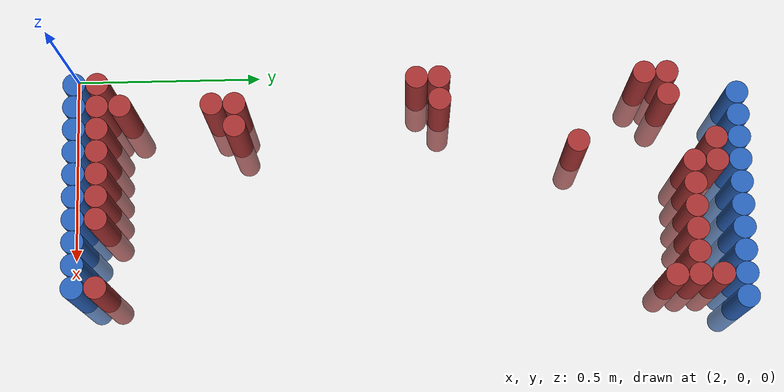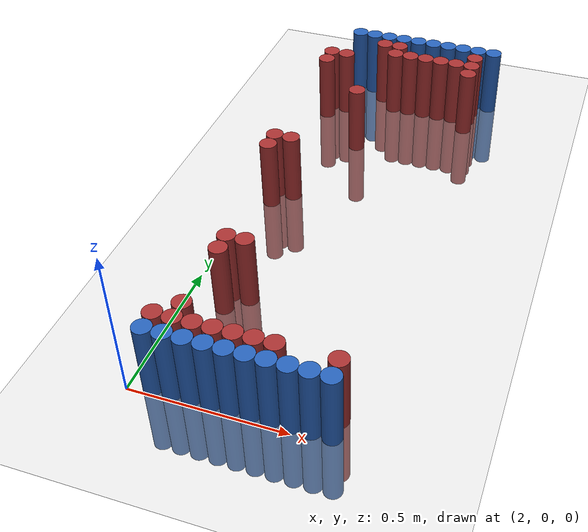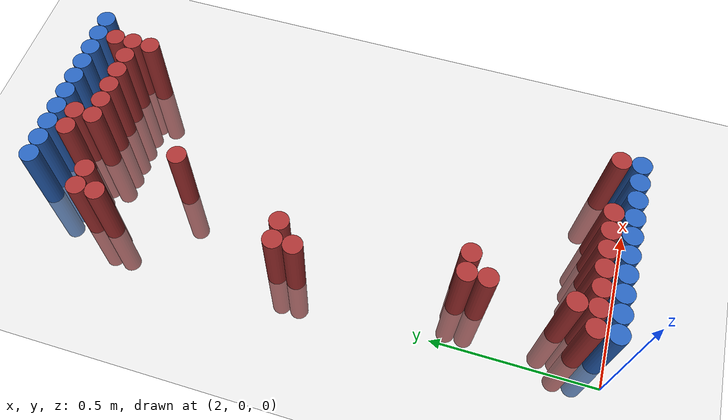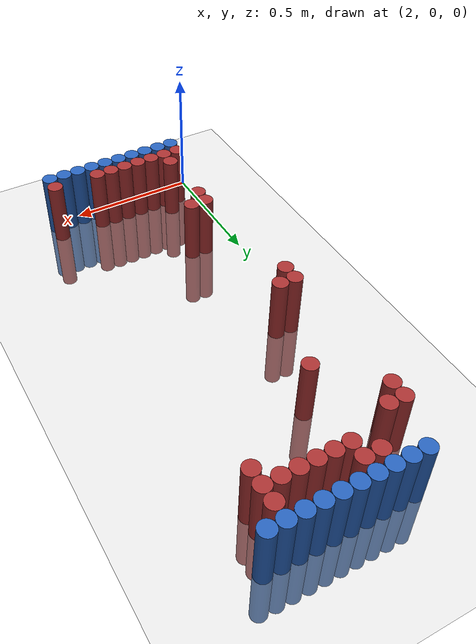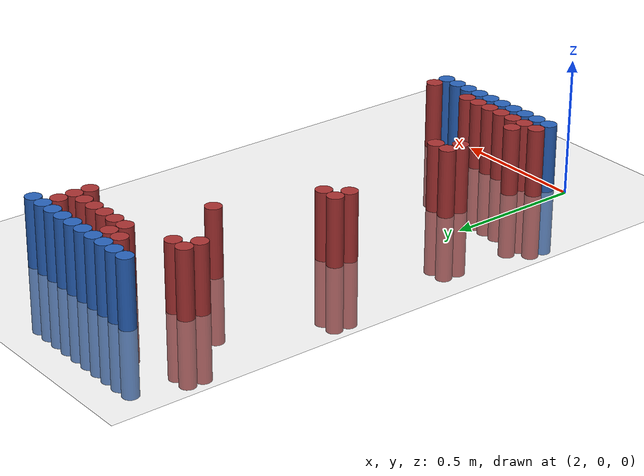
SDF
<sdf version="1.6">
 <world name="default">
  <model name="ground_plane">
   <static>1</static>
   <link name="link">
    <collision name="collision">
     <geometry><plane><normal>0 0 1</normal><size>100 100</size></plane></geometry>
     <surface><friction><ode><mu>100</mu><mu2>50</mu2></ode></friction></surface>
    </collision>
    <visual name="visual">
     <cast_shadows>0</cast_shadows>
     <geometry><plane><normal>0 0 1</normal><size>100 100</size></plane></geometry>
     <material>
      <script><uri>file://media/materials/scripts/gazebo.material</uri><name>Gazebo/Grey</name></script>
     </material>
    </visual>
   </link>
  </model>
  <model name="unit_cylinder_96">
   <static>1</static>
   <pose>2.130000 1.770000 0.000000 0.000000 0.000000 0.000000</pose>
   <link name="link">
    <inertial>
     <mass>1</mass>
     <inertia><ixx>0.145833</ixx><ixy>0</ixy><ixz>0</ixz><iyy>0.145833</iyy><iyz>0</iyz><izz>0.125</izz></inertia>
    </inertial>
    <collision name="collision">
     <geometry><cylinder><radius>0.030000</radius><length>0.5</length></cylinder></geometry>
    </collision>
    <visual name="visual">
     <geometry><cylinder><radius>0.030000</radius><length>0.5</length></cylinder></geometry>
     <material>
      <ambient>0.152000 0.379000 0.720000 1</ambient>
      <diffuse>0.152000 0.379000 0.720000 1</diffuse>
     </material>
     <material>
      <script><name>Gazebo/Grey</name><uri>file://media/materials/scripts/gazebo.material</uri></script>
     </material>
    </visual>
   </link>
  </model>
  <model name="unit_cylinder_97">
   <static>1</static>
   <pose>2.190000 1.770000 0.000000 0.000000 0.000000 0.000000</pose>
   <link name="link">
    <inertial>
     <mass>1</mass>
     <inertia><ixx>0.145833</ixx><ixy>0</ixy><ixz>0</ixz><iyy>0.145833</iyy><iyz>0</iyz><izz>0.125</izz></inertia>
    </inertial>
    <collision name="collision">
     <geometry><cylinder><radius>0.030000</radius><length>0.5</length></cylinder></geometry>
    </collision>
    <visual name="visual">
     <geometry><cylinder><radius>0.030000</radius><length>0.5</length></cylinder></geometry>
     <material>
      <ambient>0.152000 0.379000 0.720000 1</ambient>
      <diffuse>0.152000 0.379000 0.720000 1</diffuse>
     </material>
     <material>
      <script><name>Gazebo/Grey</name><uri>file://media/materials/scripts/gazebo.material</uri></script>
     </material>
    </visual>
   </link>
  </model>
  <model name="unit_cylinder_98">
   <static>1</static>
   <pose>2.250000 1.770000 0.000000 0.000000 0.000000 0.000000</pose>
   <link name="link">
    <inertial>
     <mass>1</mass>
     <inertia><ixx>0.145833</ixx><ixy>0</ixy><ixz>0</ixz><iyy>0.145833</iyy><iyz>0</iyz><izz>0.125</izz></inertia>
    </inertial>
    <collision name="collision">
     <geometry><cylinder><radius>0.030000</radius><length>0.5</length></cylinder></geometry>
    </collision>
    <visual name="visual">
     <geometry><cylinder><radius>0.030000</radius><length>0.5</length></cylinder></geometry>
     <material>
      <ambient>0.152000 0.379000 0.720000 1</ambient>
      <diffuse>0.152000 0.379000 0.720000 1</diffuse>
     </material>
     <material>
      <script><name>Gazebo/Grey</name><uri>file://media/materials/scripts/gazebo.material</uri></script>
     </material>
    </visual>
   </link>
  </model>
  <model name="unit_cylinder_99">
   <static>1</static>
   <pose>2.310000 1.770000 0.000000 0.000000 0.000000 0.000000</pose>
   <link name="link">
    <inertial>
     <mass>1</mass>
     <inertia><ixx>0.145833</ixx><ixy>0</ixy><ixz>0</ixz><iyy>0.145833</iyy><iyz>0</iyz><izz>0.125</izz></inertia>
    </inertial>
    <collision name="collision">
     <geometry><cylinder><radius>0.030000</radius><length>0.5</length></cylinder></geometry>
    </collision>
    <visual name="visual">
     <geometry><cylinder><radius>0.030000</radius><length>0.5</length></cylinder></geometry>
     <material>
      <ambient>0.152000 0.379000 0.720000 1</ambient>
      <diffuse>0.152000 0.379000 0.720000 1</diffuse>
     </material>
     <material>
      <script><name>Gazebo/Grey</name><uri>file://media/materials/scripts/gazebo.material</uri></script>
     </material>
    </visual>
   </link>
  </model>
  <model name="unit_cylinder_100">
   <static>1</static>
   <pose>2.370000 1.770000 0.000000 0.000000 0.000000 0.000000</pose>
   <link name="link">
    <inertial>
     <mass>1</mass>
     <inertia><ixx>0.145833</ixx><ixy>0</ixy><ixz>0</ixz><iyy>0.145833</iyy><iyz>0</iyz><izz>0.125</izz></inertia>
    </inertial>
    <collision name="collision">
     <geometry><cylinder><radius>0.030000</radius><length>0.5</length></cylinder></geometry>
    </collision>
    <visual name="visual">
     <geometry><cylinder><radius>0.030000</radius><length>0.5</length></cylinder></geometry>
     <material>
      <ambient>0.152000 0.379000 0.720000 1</ambient>
      <diffuse>0.152000 0.379000 0.720000 1</diffuse>
     </material>
     <material>
      <script><name>Gazebo/Grey</name><uri>file://media/materials/scripts/gazebo.material</uri></script>
     </material>
    </visual>
   </link>
  </model>
  <model name="unit_cylinder_101">
   <static>1</static>
   <pose>2.430000 1.770000 0.000000 0.000000 0.000000 0.000000</pose>
   <link name="link">
    <inertial>
     <mass>1</mass>
     <inertia><ixx>0.145833</ixx><ixy>0</ixy><ixz>0</ixz><iyy>0.145833</iyy><iyz>0</iyz><izz>0.125</izz></inertia>
    </inertial>
    <collision name="collision">
     <geometry><cylinder><radius>0.030000</radius><length>0.5</length></cylinder></geometry>
    </collision>
    <visual name="visual">
     <geometry><cylinder><radius>0.030000</radius><length>0.5</length></cylinder></geometry>
     <material>
      <ambient>0.152000 0.379000 0.720000 1</ambient>
      <diffuse>0.152000 0.379000 0.720000 1</diffuse>
     </material>
     <material>
      <script><name>Gazebo/Grey</name><uri>file://media/materials/scripts/gazebo.material</uri></script>
     </material>
    </visual>
   </link>
  </model>
  <model name="unit_cylinder_102">
   <static>1</static>
   <pose>2.490000 1.770000 0.000000 0.000000 0.000000 0.000000</pose>
   <link name="link">
    <inertial>
     <mass>1</mass>
     <inertia><ixx>0.145833</ixx><ixy>0</ixy><ixz>0</ixz><iyy>0.145833</iyy><iyz>0</iyz><izz>0.125</izz></inertia>
    </inertial>
    <collision name="collision">
     <geometry><cylinder><radius>0.030000</radius><length>0.5</length></cylinder></geometry>
    </collision>
    <visual name="visual">
     <geometry><cylinder><radius>0.030000</radius><length>0.5</length></cylinder></geometry>
     <material>
      <ambient>0.152000 0.379000 0.720000 1</ambient>
      <diffuse>0.152000 0.379000 0.720000 1</diffuse>
     </material>
     <material>
      <script><name>Gazebo/Grey</name><uri>file://media/materials/scripts/gazebo.material</uri></script>
     </material>
    </visual>
   </link>
  </model>
  <model name="unit_cylinder_103">
   <static>1</static>
   <pose>2.550000 1.770000 0.000000 0.000000 0.000000 0.000000</pose>
   <link name="link">
    <inertial>
     <mass>1</mass>
     <inertia><ixx>0.145833</ixx><ixy>0</ixy><ixz>0</ixz><iyy>0.145833</iyy><iyz>0</iyz><izz>0.125</izz></inertia>
    </inertial>
    <collision name="collision">
     <geometry><cylinder><radius>0.030000</radius><length>0.5</length></cylinder></geometry>
    </collision>
    <visual name="visual">
     <geometry><cylinder><radius>0.030000</radius><length>0.5</length></cylinder></geometry>
     <material>
      <ambient>0.152000 0.379000 0.720000 1</ambient>
      <diffuse>0.152000 0.379000 0.720000 1</diffuse>
     </material>
     <material>
      <script><name>Gazebo/Grey</name><uri>file://media/materials/scripts/gazebo.material</uri></script>
     </material>
    </visual>
   </link>
  </model>
  <model name="unit_cylinder_104">
   <static>1</static>
   <pose>2.610000 1.770000 0.000000 0.000000 0.000000 0.000000</pose>
   <link name="link">
    <inertial>
     <mass>1</mass>
     <inertia><ixx>0.145833</ixx><ixy>0</ixy><ixz>0</ixz><iyy>0.145833</iyy><iyz>0</iyz><izz>0.125</izz></inertia>
    </inertial>
    <collision name="collision">
     <geometry><cylinder><radius>0.030000</radius><length>0.5</length></cylinder></geometry>
    </collision>
    <visual name="visual">
     <geometry><cylinder><radius>0.030000</radius><length>0.5</length></cylinder></geometry>
     <material>
      <ambient>0.152000 0.379000 0.720000 1</ambient>
      <diffuse>0.152000 0.379000 0.720000 1</diffuse>
     </material>
     <material>
      <script><name>Gazebo/Grey</name><uri>file://media/materials/scripts/gazebo.material</uri></script>
     </material>
    </visual>
   </link>
  </model>
  <model name="unit_cylinder_105">
   <static>1</static>
   <pose>2.670000 1.770000 0.000000 0.000000 0.000000 0.000000</pose>
   <link name="link">
    <inertial>
     <mass>1</mass>
     <inertia><ixx>0.145833</ixx><ixy>0</ixy><ixz>0</ixz><iyy>0.145833</iyy><iyz>0</iyz><izz>0.125</izz></inertia>
    </inertial>
    <collision name="collision">
     <geometry><cylinder><radius>0.030000</radius><length>0.5</length></cylinder></geometry>
    </collision>
    <visual name="visual">
     <geometry><cylinder><radius>0.030000</radius><length>0.5</length></cylinder></geometry>
     <material>
      <ambient>0.152000 0.379000 0.720000 1</ambient>
      <diffuse>0.152000 0.379000 0.720000 1</diffuse>
     </material>
     <material>
      <script><name>Gazebo/Grey</name><uri>file://media/materials/scripts/gazebo.material</uri></script>
     </material>
    </visual>
   </link>
  </model>
  <model name="unit_cylinder_126">
   <static>1</static>
   <pose>2.250000 1.710000 0.000000 0.000000 0.000000 0.000000</pose>
   <link name="link">
    <inertial>
     <mass>1</mass>
     <inertia><ixx>0.145833</ixx><ixy>0</ixy><ixz>0</ixz><iyy>0.145833</iyy><iyz>0</iyz><izz>0.125</izz></inertia>
    </inertial>
    <collision name="collision">
     <geometry><cylinder><radius>0.030000</radius><length>0.5</length></cylinder></geometry>
    </collision>
    <visual name="visual">
     <geometry><cylinder><radius>0.030000</radius><length>0.5</length></cylinder></geometry>
     <material>
      <ambient>0.648000 0.192000 0.192000 1</ambient>
      <diffuse>0.648000 0.192000 0.192000 1</diffuse>
     </material>
     <material>
      <script><name>Gazebo/Grey</name><uri>file://media/materials/scripts/gazebo.material</uri></script>
     </material>
    </visual>
   </link>
  </model>
  <model name="unit_cylinder_127">
   <static>1</static>
   <pose>2.310000 1.710000 0.000000 0.000000 0.000000 0.000000</pose>
   <link name="link">
    <inertial>
     <mass>1</mass>
     <inertia><ixx>0.145833</ixx><ixy>0</ixy><ixz>0</ixz><iyy>0.145833</iyy><iyz>0</iyz><izz>0.125</izz></inertia>
    </inertial>
    <collision name="collision">
     <geometry><cylinder><radius>0.030000</radius><length>0.5</length></cylinder></geometry>
    </collision>
    <visual name="visual">
     <geometry><cylinder><radius>0.030000</radius><length>0.5</length></cylinder></geometry>
     <material>
      <ambient>0.648000 0.192000 0.192000 1</ambient>
      <diffuse>0.648000 0.192000 0.192000 1</diffuse>
     </material>
     <material>
      <script><name>Gazebo/Grey</name><uri>file://media/materials/scripts/gazebo.material</uri></script>
     </material>
    </visual>
   </link>
  </model>
  <model name="unit_cylinder_128">
   <static>1</static>
   <pose>2.610000 1.710000 0.000000 0.000000 0.000000 0.000000</pose>
   <link name="link">
    <inertial>
     <mass>1</mass>
     <inertia><ixx>0.145833</ixx><ixy>0</ixy><ixz>0</ixz><iyy>0.145833</iyy><iyz>0</iyz><izz>0.125</izz></inertia>
    </inertial>
    <collision name="collision">
     <geometry><cylinder><radius>0.030000</radius><length>0.5</length></cylinder></geometry>
    </collision>
    <visual name="visual">
     <geometry><cylinder><radius>0.030000</radius><length>0.5</length></cylinder></geometry>
     <material>
      <ambient>0.648000 0.192000 0.192000 1</ambient>
      <diffuse>0.648000 0.192000 0.192000 1</diffuse>
     </material>
     <material>
      <script><name>Gazebo/Grey</name><uri>file://media/materials/scripts/gazebo.material</uri></script>
     </material>
    </visual>
   </link>
  </model>
  <model name="unit_cylinder_134">
   <static>1</static>
   <pose>2.310000 1.650000 0.000000 0.000000 0.000000 0.000000</pose>
   <link name="link">
    <inertial>
     <mass>1</mass>
     <inertia><ixx>0.145833</ixx><ixy>0</ixy><ixz>0</ixz><iyy>0.145833</iyy><iyz>0</iyz><izz>0.125</izz></inertia>
    </inertial>
    <collision name="collision">
     <geometry><cylinder><radius>0.030000</radius><length>0.5</length></cylinder></geometry>
    </collision>
    <visual name="visual">
     <geometry><cylinder><radius>0.030000</radius><length>0.5</length></cylinder></geometry>
     <material>
      <ambient>0.648000 0.192000 0.192000 1</ambient>
      <diffuse>0.648000 0.192000 0.192000 1</diffuse>
     </material>
     <material>
      <script><name>Gazebo/Grey</name><uri>file://media/materials/scripts/gazebo.material</uri></script>
     </material>
    </visual>
   </link>
  </model>
  <model name="unit_cylinder_135">
   <static>1</static>
   <pose>2.370000 1.650000 0.000000 0.000000 0.000000 0.000000</pose>
   <link name="link">
    <inertial>
     <mass>1</mass>
     <inertia><ixx>0.145833</ixx><ixy>0</ixy><ixz>0</ixz><iyy>0.145833</iyy><iyz>0</iyz><izz>0.125</izz></inertia>
    </inertial>
    <collision name="collision">
     <geometry><cylinder><radius>0.030000</radius><length>0.5</length></cylinder></geometry>
    </collision>
    <visual name="visual">
     <geometry><cylinder><radius>0.030000</radius><length>0.5</length></cylinder></geometry>
     <material>
      <ambient>0.648000 0.192000 0.192000 1</ambient>
      <diffuse>0.648000 0.192000 0.192000 1</diffuse>
     </material>
     <material>
      <script><name>Gazebo/Grey</name><uri>file://media/materials/scripts/gazebo.material</uri></script>
     </material>
    </visual>
   </link>
  </model>
  <model name="unit_cylinder_136">
   <static>1</static>
   <pose>2.430000 1.650000 0.000000 0.000000 0.000000 0.000000</pose>
   <link name="link">
    <inertial>
     <mass>1</mass>
     <inertia><ixx>0.145833</ixx><ixy>0</ixy><ixz>0</ixz><iyy>0.145833</iyy><iyz>0</iyz><izz>0.125</izz></inertia>
    </inertial>
    <collision name="collision">
     <geometry><cylinder><radius>0.030000</radius><length>0.5</length></cylinder></geometry>
    </collision>
    <visual name="visual">
     <geometry><cylinder><radius>0.030000</radius><length>0.5</length></cylinder></geometry>
     <material>
      <ambient>0.648000 0.192000 0.192000 1</ambient>
      <diffuse>0.648000 0.192000 0.192000 1</diffuse>
     </material>
     <material>
      <script><name>Gazebo/Grey</name><uri>file://media/materials/scripts/gazebo.material</uri></script>
     </material>
    </visual>
   </link>
  </model>
  <model name="unit_cylinder_137">
   <static>1</static>
   <pose>2.490000 1.650000 0.000000 0.000000 0.000000 0.000000</pose>
   <link name="link">
    <inertial>
     <mass>1</mass>
     <inertia><ixx>0.145833</ixx><ixy>0</ixy><ixz>0</ixz><iyy>0.145833</iyy><iyz>0</iyz><izz>0.125</izz></inertia>
    </inertial>
    <collision name="collision">
     <geometry><cylinder><radius>0.030000</radius><length>0.5</length></cylinder></geometry>
    </collision>
    <visual name="visual">
     <geometry><cylinder><radius>0.030000</radius><length>0.5</length></cylinder></geometry>
     <material>
      <ambient>0.648000 0.192000 0.192000 1</ambient>
      <diffuse>0.648000 0.192000 0.192000 1</diffuse>
     </material>
     <material>
      <script><name>Gazebo/Grey</name><uri>file://media/materials/scripts/gazebo.material</uri></script>
     </material>
    </visual>
   </link>
  </model>
  <model name="unit_cylinder_138">
   <static>1</static>
   <pose>2.550000 1.650000 0.000000 0.000000 0.000000 0.000000</pose>
   <link name="link">
    <inertial>
     <mass>1</mass>
     <inertia><ixx>0.145833</ixx><ixy>0</ixy><ixz>0</ixz><iyy>0.145833</iyy><iyz>0</iyz><izz>0.125</izz></inertia>
    </inertial>
    <collision name="collision">
     <geometry><cylinder><radius>0.030000</radius><length>0.5</length></cylinder></geometry>
    </collision>
    <visual name="visual">
     <geometry><cylinder><radius>0.030000</radius><length>0.5</length></cylinder></geometry>
     <material>
      <ambient>0.648000 0.192000 0.192000 1</ambient>
      <diffuse>0.648000 0.192000 0.192000 1</diffuse>
     </material>
     <material>
      <script><name>Gazebo/Grey</name><uri>file://media/materials/scripts/gazebo.material</uri></script>
     </material>
    </visual>
   </link>
  </model>
  <model name="unit_cylinder_139">
   <static>1</static>
   <pose>2.610000 1.650000 0.000000 0.000000 0.000000 0.000000</pose>
   <link name="link">
    <inertial>
     <mass>1</mass>
     <inertia><ixx>0.145833</ixx><ixy>0</ixy><ixz>0</ixz><iyy>0.145833</iyy><iyz>0</iyz><izz>0.125</izz></inertia>
    </inertial>
    <collision name="collision">
     <geometry><cylinder><radius>0.030000</radius><length>0.5</length></cylinder></geometry>
    </collision>
    <visual name="visual">
     <geometry><cylinder><radius>0.030000</radius><length>0.5</length></cylinder></geometry>
     <material>
      <ambient>0.648000 0.192000 0.192000 1</ambient>
      <diffuse>0.648000 0.192000 0.192000 1</diffuse>
     </material>
     <material>
      <script><name>Gazebo/Grey</name><uri>file://media/materials/scripts/gazebo.material</uri></script>
     </material>
    </visual>
   </link>
  </model>
  <model name="unit_cylinder_140">
   <static>1</static>
   <pose>2.070000 1.590000 0.000000 0.000000 0.000000 0.000000</pose>
   <link name="link">
    <inertial>
     <mass>1</mass>
     <inertia><ixx>0.145833</ixx><ixy>0</ixy><ixz>0</ixz><iyy>0.145833</iyy><iyz>0</iyz><izz>0.125</izz></inertia>
    </inertial>
    <collision name="collision">
     <geometry><cylinder><radius>0.030000</radius><length>0.5</length></cylinder></geometry>
    </collision>
    <visual name="visual">
     <geometry><cylinder><radius>0.030000</radius><length>0.5</length></cylinder></geometry>
     <material>
      <ambient>0.648000 0.192000 0.192000 1</ambient>
      <diffuse>0.648000 0.192000 0.192000 1</diffuse>
     </material>
     <material>
      <script><name>Gazebo/Grey</name><uri>file://media/materials/scripts/gazebo.material</uri></script>
     </material>
    </visual>
   </link>
  </model>
  <model name="unit_cylinder_141">
   <static>1</static>
   <pose>2.130000 1.590000 0.000000 0.000000 0.000000 0.000000</pose>
   <link name="link">
    <inertial>
     <mass>1</mass>
     <inertia><ixx>0.145833</ixx><ixy>0</ixy><ixz>0</ixz><iyy>0.145833</iyy><iyz>0</iyz><izz>0.125</izz></inertia>
    </inertial>
    <collision name="collision">
     <geometry><cylinder><radius>0.030000</radius><length>0.5</length></cylinder></geometry>
    </collision>
    <visual name="visual">
     <geometry><cylinder><radius>0.030000</radius><length>0.5</length></cylinder></geometry>
     <material>
      <ambient>0.648000 0.192000 0.192000 1</ambient>
      <diffuse>0.648000 0.192000 0.192000 1</diffuse>
     </material>
     <material>
      <script><name>Gazebo/Grey</name><uri>file://media/materials/scripts/gazebo.material</uri></script>
     </material>
    </visual>
   </link>
  </model>
  <model name="unit_cylinder_142">
   <static>1</static>
   <pose>2.610000 1.590000 0.000000 0.000000 0.000000 0.000000</pose>
   <link name="link">
    <inertial>
     <mass>1</mass>
     <inertia><ixx>0.145833</ixx><ixy>0</ixy><ixz>0</ixz><iyy>0.145833</iyy><iyz>0</iyz><izz>0.125</izz></inertia>
    </inertial>
    <collision name="collision">
     <geometry><cylinder><radius>0.030000</radius><length>0.5</length></cylinder></geometry>
    </collision>
    <visual name="visual">
     <geometry><cylinder><radius>0.030000</radius><length>0.5</length></cylinder></geometry>
     <material>
      <ambient>0.648000 0.192000 0.192000 1</ambient>
      <diffuse>0.648000 0.192000 0.192000 1</diffuse>
     </material>
     <material>
      <script><name>Gazebo/Grey</name><uri>file://media/materials/scripts/gazebo.material</uri></script>
     </material>
    </visual>
   </link>
  </model>
  <model name="unit_cylinder_143">
   <static>1</static>
   <pose>2.070000 1.530000 0.000000 0.000000 0.000000 0.000000</pose>
   <link name="link">
    <inertial>
     <mass>1</mass>
     <inertia><ixx>0.145833</ixx><ixy>0</ixy><ixz>0</ixz><iyy>0.145833</iyy><iyz>0</iyz><izz>0.125</izz></inertia>
    </inertial>
    <collision name="collision">
     <geometry><cylinder><radius>0.030000</radius><length>0.5</length></cylinder></geometry>
    </collision>
    <visual name="visual">
     <geometry><cylinder><radius>0.030000</radius><length>0.5</length></cylinder></geometry>
     <material>
      <ambient>0.648000 0.192000 0.192000 1</ambient>
      <diffuse>0.648000 0.192000 0.192000 1</diffuse>
     </material>
     <material>
      <script><name>Gazebo/Grey</name><uri>file://media/materials/scripts/gazebo.material</uri></script>
     </material>
    </visual>
   </link>
  </model>
  <model name="unit_cylinder_155">
   <static>1</static>
   <pose>2.250000 1.350000 0.000000 0.000000 0.000000 0.000000</pose>
   <link name="link">
    <inertial>
     <mass>1</mass>
     <inertia><ixx>0.145833</ixx><ixy>0</ixy><ixz>0</ixz><iyy>0.145833</iyy><iyz>0</iyz><izz>0.125</izz></inertia>
    </inertial>
    <collision name="collision">
     <geometry><cylinder><radius>0.030000</radius><length>0.5</length></cylinder></geometry>
    </collision>
    <visual name="visual">
     <geometry><cylinder><radius>0.030000</radius><length>0.5</length></cylinder></geometry>
     <material>
      <ambient>0.648000 0.192000 0.192000 1</ambient>
      <diffuse>0.648000 0.192000 0.192000 1</diffuse>
     </material>
     <material>
      <script><name>Gazebo/Grey</name><uri>file://media/materials/scripts/gazebo.material</uri></script>
     </material>
    </visual>
   </link>
  </model>
  <model name="unit_cylinder_172">
   <static>1</static>
   <pose>2.070000 0.990000 0.000000 0.000000 0.000000 0.000000</pose>
   <link name="link">
    <inertial>
     <mass>1</mass>
     <inertia><ixx>0.145833</ixx><ixy>0</ixy><ixz>0</ixz><iyy>0.145833</iyy><iyz>0</iyz><izz>0.125</izz></inertia>
    </inertial>
    <collision name="collision">
     <geometry><cylinder><radius>0.030000</radius><length>0.5</length></cylinder></geometry>
    </collision>
    <visual name="visual">
     <geometry><cylinder><radius>0.030000</radius><length>0.5</length></cylinder></geometry>
     <material>
      <ambient>0.648000 0.192000 0.192000 1</ambient>
      <diffuse>0.648000 0.192000 0.192000 1</diffuse>
     </material>
     <material>
      <script><name>Gazebo/Grey</name><uri>file://media/materials/scripts/gazebo.material</uri></script>
     </material>
    </visual>
   </link>
  </model>
  <model name="unit_cylinder_173">
   <static>1</static>
   <pose>2.130000 0.990000 0.000000 0.000000 0.000000 0.000000</pose>
   <link name="link">
    <inertial>
     <mass>1</mass>
     <inertia><ixx>0.145833</ixx><ixy>0</ixy><ixz>0</ixz><iyy>0.145833</iyy><iyz>0</iyz><izz>0.125</izz></inertia>
    </inertial>
    <collision name="collision">
     <geometry><cylinder><radius>0.030000</radius><length>0.5</length></cylinder></geometry>
    </collision>
    <visual name="visual">
     <geometry><cylinder><radius>0.030000</radius><length>0.5</length></cylinder></geometry>
     <material>
      <ambient>0.648000 0.192000 0.192000 1</ambient>
      <diffuse>0.648000 0.192000 0.192000 1</diffuse>
     </material>
     <material>
      <script><name>Gazebo/Grey</name><uri>file://media/materials/scripts/gazebo.material</uri></script>
     </material>
    </visual>
   </link>
  </model>
  <model name="unit_cylinder_177">
   <static>1</static>
   <pose>2.070000 0.930000 0.000000 0.000000 0.000000 0.000000</pose>
   <link name="link">
    <inertial>
     <mass>1</mass>
     <inertia><ixx>0.145833</ixx><ixy>0</ixy><ixz>0</ixz><iyy>0.145833</iyy><iyz>0</iyz><izz>0.125</izz></inertia>
    </inertial>
    <collision name="collision">
     <geometry><cylinder><radius>0.030000</radius><length>0.5</length></cylinder></geometry>
    </collision>
    <visual name="visual">
     <geometry><cylinder><radius>0.030000</radius><length>0.5</length></cylinder></geometry>
     <material>
      <ambient>0.648000 0.192000 0.192000 1</ambient>
      <diffuse>0.648000 0.192000 0.192000 1</diffuse>
     </material>
     <material>
      <script><name>Gazebo/Grey</name><uri>file://media/materials/scripts/gazebo.material</uri></script>
     </material>
    </visual>
   </link>
  </model>
  <model name="unit_cylinder_193">
   <static>1</static>
   <pose>2.130000 0.450000 0.000000 0.000000 0.000000 0.000000</pose>
   <link name="link">
    <inertial>
     <mass>1</mass>
     <inertia><ixx>0.145833</ixx><ixy>0</ixy><ixz>0</ixz><iyy>0.145833</iyy><iyz>0</iyz><izz>0.125</izz></inertia>
    </inertial>
    <collision name="collision">
     <geometry><cylinder><radius>0.030000</radius><length>0.5</length></cylinder></geometry>
    </collision>
    <visual name="visual">
     <geometry><cylinder><radius>0.030000</radius><length>0.5</length></cylinder></geometry>
     <material>
      <ambient>0.648000 0.192000 0.192000 1</ambient>
      <diffuse>0.648000 0.192000 0.192000 1</diffuse>
     </material>
     <material>
      <script><name>Gazebo/Grey</name><uri>file://media/materials/scripts/gazebo.material</uri></script>
     </material>
    </visual>
   </link>
  </model>
  <model name="unit_cylinder_194">
   <static>1</static>
   <pose>2.190000 0.450000 0.000000 0.000000 0.000000 0.000000</pose>
   <link name="link">
    <inertial>
     <mass>1</mass>
     <inertia><ixx>0.145833</ixx><ixy>0</ixy><ixz>0</ixz><iyy>0.145833</iyy><iyz>0</iyz><izz>0.125</izz></inertia>
    </inertial>
    <collision name="collision">
     <geometry><cylinder><radius>0.030000</radius><length>0.5</length></cylinder></geometry>
    </collision>
    <visual name="visual">
     <geometry><cylinder><radius>0.030000</radius><length>0.5</length></cylinder></geometry>
     <material>
      <ambient>0.648000 0.192000 0.192000 1</ambient>
      <diffuse>0.648000 0.192000 0.192000 1</diffuse>
     </material>
     <material>
      <script><name>Gazebo/Grey</name><uri>file://media/materials/scripts/gazebo.material</uri></script>
     </material>
    </visual>
   </link>
  </model>
  <model name="unit_cylinder_196">
   <static>1</static>
   <pose>2.130000 0.390000 0.000000 0.000000 0.000000 0.000000</pose>
   <link name="link">
    <inertial>
     <mass>1</mass>
     <inertia><ixx>0.145833</ixx><ixy>0</ixy><ixz>0</ixz><iyy>0.145833</iyy><iyz>0</iyz><izz>0.125</izz></inertia>
    </inertial>
    <collision name="collision">
     <geometry><cylinder><radius>0.030000</radius><length>0.5</length></cylinder></geometry>
    </collision>
    <visual name="visual">
     <geometry><cylinder><radius>0.030000</radius><length>0.5</length></cylinder></geometry>
     <material>
      <ambient>0.648000 0.192000 0.192000 1</ambient>
      <diffuse>0.648000 0.192000 0.192000 1</diffuse>
     </material>
     <material>
      <script><name>Gazebo/Grey</name><uri>file://media/materials/scripts/gazebo.material</uri></script>
     </material>
    </visual>
   </link>
  </model>
  <model name="unit_cylinder_197">
   <static>1</static>
   <pose>2.130000 0.150000 0.000000 0.000000 0.000000 0.000000</pose>
   <link name="link">
    <inertial>
     <mass>1</mass>
     <inertia><ixx>0.145833</ixx><ixy>0</ixy><ixz>0</ixz><iyy>0.145833</iyy><iyz>0</iyz><izz>0.125</izz></inertia>
    </inertial>
    <collision name="collision">
     <geometry><cylinder><radius>0.030000</radius><length>0.5</length></cylinder></geometry>
    </collision>
    <visual name="visual">
     <geometry><cylinder><radius>0.030000</radius><length>0.5</length></cylinder></geometry>
     <material>
      <ambient>0.648000 0.192000 0.192000 1</ambient>
      <diffuse>0.648000 0.192000 0.192000 1</diffuse>
     </material>
     <material>
      <script><name>Gazebo/Grey</name><uri>file://media/materials/scripts/gazebo.material</uri></script>
     </material>
    </visual>
   </link>
  </model>
  <model name="unit_cylinder_198">
   <static>1</static>
   <pose>2.070000 0.090000 0.000000 0.000000 0.000000 0.000000</pose>
   <link name="link">
    <inertial>
     <mass>1</mass>
     <inertia><ixx>0.145833</ixx><ixy>0</ixy><ixz>0</ixz><iyy>0.145833</iyy><iyz>0</iyz><izz>0.125</izz></inertia>
    </inertial>
    <collision name="collision">
     <geometry><cylinder><radius>0.030000</radius><length>0.5</length></cylinder></geometry>
    </collision>
    <visual name="visual">
     <geometry><cylinder><radius>0.030000</radius><length>0.5</length></cylinder></geometry>
     <material>
      <ambient>0.648000 0.192000 0.192000 1</ambient>
      <diffuse>0.648000 0.192000 0.192000 1</diffuse>
     </material>
     <material>
      <script><name>Gazebo/Grey</name><uri>file://media/materials/scripts/gazebo.material</uri></script>
     </material>
    </visual>
   </link>
  </model>
  <model name="unit_cylinder_199">
   <static>1</static>
   <pose>2.130000 0.090000 0.000000 0.000000 0.000000 0.000000</pose>
   <link name="link">
    <inertial>
     <mass>1</mass>
     <inertia><ixx>0.145833</ixx><ixy>0</ixy><ixz>0</ixz><iyy>0.145833</iyy><iyz>0</iyz><izz>0.125</izz></inertia>
    </inertial>
    <collision name="collision">
     <geometry><cylinder><radius>0.030000</radius><length>0.5</length></cylinder></geometry>
    </collision>
    <visual name="visual">
     <geometry><cylinder><radius>0.030000</radius><length>0.5</length></cylinder></geometry>
     <material>
      <ambient>0.648000 0.192000 0.192000 1</ambient>
      <diffuse>0.648000 0.192000 0.192000 1</diffuse>
     </material>
     <material>
      <script><name>Gazebo/Grey</name><uri>file://media/materials/scripts/gazebo.material</uri></script>
     </material>
    </visual>
   </link>
  </model>
  <model name="unit_cylinder_200">
   <static>1</static>
   <pose>2.190000 0.090000 0.000000 0.000000 0.000000 0.000000</pose>
   <link name="link">
    <inertial>
     <mass>1</mass>
     <inertia><ixx>0.145833</ixx><ixy>0</ixy><ixz>0</ixz><iyy>0.145833</iyy><iyz>0</iyz><izz>0.125</izz></inertia>
    </inertial>
    <collision name="collision">
     <geometry><cylinder><radius>0.030000</radius><length>0.5</length></cylinder></geometry>
    </collision>
    <visual name="visual">
     <geometry><cylinder><radius>0.030000</radius><length>0.5</length></cylinder></geometry>
     <material>
      <ambient>0.648000 0.192000 0.192000 1</ambient>
      <diffuse>0.648000 0.192000 0.192000 1</diffuse>
     </material>
     <material>
      <script><name>Gazebo/Grey</name><uri>file://media/materials/scripts/gazebo.material</uri></script>
     </material>
    </visual>
   </link>
  </model>
  <model name="unit_cylinder_201">
   <static>1</static>
   <pose>2.250000 0.090000 0.000000 0.000000 0.000000 0.000000</pose>
   <link name="link">
    <inertial>
     <mass>1</mass>
     <inertia><ixx>0.145833</ixx><ixy>0</ixy><ixz>0</ixz><iyy>0.145833</iyy><iyz>0</iyz><izz>0.125</izz></inertia>
    </inertial>
    <collision name="collision">
     <geometry><cylinder><radius>0.030000</radius><length>0.5</length></cylinder></geometry>
    </collision>
    <visual name="visual">
     <geometry><cylinder><radius>0.030000</radius><length>0.5</length></cylinder></geometry>
     <material>
      <ambient>0.648000 0.192000 0.192000 1</ambient>
      <diffuse>0.648000 0.192000 0.192000 1</diffuse>
     </material>
     <material>
      <script><name>Gazebo/Grey</name><uri>file://media/materials/scripts/gazebo.material</uri></script>
     </material>
    </visual>
   </link>
  </model>
  <model name="unit_cylinder_202">
   <static>1</static>
   <pose>2.310000 0.090000 0.000000 0.000000 0.000000 0.000000</pose>
   <link name="link">
    <inertial>
     <mass>1</mass>
     <inertia><ixx>0.145833</ixx><ixy>0</ixy><ixz>0</ixz><iyy>0.145833</iyy><iyz>0</iyz><izz>0.125</izz></inertia>
    </inertial>
    <collision name="collision">
     <geometry><cylinder><radius>0.030000</radius><length>0.5</length></cylinder></geometry>
    </collision>
    <visual name="visual">
     <geometry><cylinder><radius>0.030000</radius><length>0.5</length></cylinder></geometry>
     <material>
      <ambient>0.648000 0.192000 0.192000 1</ambient>
      <diffuse>0.648000 0.192000 0.192000 1</diffuse>
     </material>
     <material>
      <script><name>Gazebo/Grey</name><uri>file://media/materials/scripts/gazebo.material</uri></script>
     </material>
    </visual>
   </link>
  </model>
  <model name="unit_cylinder_203">
   <static>1</static>
   <pose>2.370000 0.090000 0.000000 0.000000 0.000000 0.000000</pose>
   <link name="link">
    <inertial>
     <mass>1</mass>
     <inertia><ixx>0.145833</ixx><ixy>0</ixy><ixz>0</ixz><iyy>0.145833</iyy><iyz>0</iyz><izz>0.125</izz></inertia>
    </inertial>
    <collision name="collision">
     <geometry><cylinder><radius>0.030000</radius><length>0.5</length></cylinder></geometry>
    </collision>
    <visual name="visual">
     <geometry><cylinder><radius>0.030000</radius><length>0.5</length></cylinder></geometry>
     <material>
      <ambient>0.648000 0.192000 0.192000 1</ambient>
      <diffuse>0.648000 0.192000 0.192000 1</diffuse>
     </material>
     <material>
      <script><name>Gazebo/Grey</name><uri>file://media/materials/scripts/gazebo.material</uri></script>
     </material>
    </visual>
   </link>
  </model>
  <model name="unit_cylinder_204">
   <static>1</static>
   <pose>2.430000 0.090000 0.000000 0.000000 0.000000 0.000000</pose>
   <link name="link">
    <inertial>
     <mass>1</mass>
     <inertia><ixx>0.145833</ixx><ixy>0</ixy><ixz>0</ixz><iyy>0.145833</iyy><iyz>0</iyz><izz>0.125</izz></inertia>
    </inertial>
    <collision name="collision">
     <geometry><cylinder><radius>0.030000</radius><length>0.5</length></cylinder></geometry>
    </collision>
    <visual name="visual">
     <geometry><cylinder><radius>0.030000</radius><length>0.5</length></cylinder></geometry>
     <material>
      <ambient>0.648000 0.192000 0.192000 1</ambient>
      <diffuse>0.648000 0.192000 0.192000 1</diffuse>
     </material>
     <material>
      <script><name>Gazebo/Grey</name><uri>file://media/materials/scripts/gazebo.material</uri></script>
     </material>
    </visual>
   </link>
  </model>
  <model name="unit_cylinder_205">
   <static>1</static>
   <pose>2.610000 0.090000 0.000000 0.000000 0.000000 0.000000</pose>
   <link name="link">
    <inertial>
     <mass>1</mass>
     <inertia><ixx>0.145833</ixx><ixy>0</ixy><ixz>0</ixz><iyy>0.145833</iyy><iyz>0</iyz><izz>0.125</izz></inertia>
    </inertial>
    <collision name="collision">
     <geometry><cylinder><radius>0.030000</radius><length>0.5</length></cylinder></geometry>
    </collision>
    <visual name="visual">
     <geometry><cylinder><radius>0.030000</radius><length>0.5</length></cylinder></geometry>
     <material>
      <ambient>0.648000 0.192000 0.192000 1</ambient>
      <diffuse>0.648000 0.192000 0.192000 1</diffuse>
     </material>
     <material>
      <script><name>Gazebo/Grey</name><uri>file://media/materials/scripts/gazebo.material</uri></script>
     </material>
    </visual>
   </link>
  </model>
  <model name="unit_cylinder_213">
   <static>1</static>
   <pose>2.070000 0.030000 0.000000 0.000000 0.000000 0.000000</pose>
   <link name="link">
    <inertial>
     <mass>1</mass>
     <inertia><ixx>0.145833</ixx><ixy>0</ixy><ixz>0</ixz><iyy>0.145833</iyy><iyz>0</iyz><izz>0.125</izz></inertia>
    </inertial>
    <collision name="collision">
     <geometry><cylinder><radius>0.030000</radius><length>0.5</length></cylinder></geometry>
    </collision>
    <visual name="visual">
     <geometry><cylinder><radius>0.030000</radius><length>0.5</length></cylinder></geometry>
     <material>
      <ambient>0.152000 0.379000 0.720000 1</ambient>
      <diffuse>0.152000 0.379000 0.720000 1</diffuse>
     </material>
     <material>
      <script><name>Gazebo/Grey</name><uri>file://media/materials/scripts/gazebo.material</uri></script>
     </material>
    </visual>
   </link>
  </model>
  <model name="unit_cylinder_214">
   <static>1</static>
   <pose>2.130000 0.030000 0.000000 0.000000 0.000000 0.000000</pose>
   <link name="link">
    <inertial>
     <mass>1</mass>
     <inertia><ixx>0.145833</ixx><ixy>0</ixy><ixz>0</ixz><iyy>0.145833</iyy><iyz>0</iyz><izz>0.125</izz></inertia>
    </inertial>
    <collision name="collision">
     <geometry><cylinder><radius>0.030000</radius><length>0.5</length></cylinder></geometry>
    </collision>
    <visual name="visual">
     <geometry><cylinder><radius>0.030000</radius><length>0.5</length></cylinder></geometry>
     <material>
      <ambient>0.152000 0.379000 0.720000 1</ambient>
      <diffuse>0.152000 0.379000 0.720000 1</diffuse>
     </material>
     <material>
      <script><name>Gazebo/Grey</name><uri>file://media/materials/scripts/gazebo.material</uri></script>
     </material>
    </visual>
   </link>
  </model>
  <model name="unit_cylinder_215">
   <static>1</static>
   <pose>2.190000 0.030000 0.000000 0.000000 0.000000 0.000000</pose>
   <link name="link">
    <inertial>
     <mass>1</mass>
     <inertia><ixx>0.145833</ixx><ixy>0</ixy><ixz>0</ixz><iyy>0.145833</iyy><iyz>0</iyz><izz>0.125</izz></inertia>
    </inertial>
    <collision name="collision">
     <geometry><cylinder><radius>0.030000</radius><length>0.5</length></cylinder></geometry>
    </collision>
    <visual name="visual">
     <geometry><cylinder><radius>0.030000</radius><length>0.5</length></cylinder></geometry>
     <material>
      <ambient>0.152000 0.379000 0.720000 1</ambient>
      <diffuse>0.152000 0.379000 0.720000 1</diffuse>
     </material>
     <material>
      <script><name>Gazebo/Grey</name><uri>file://media/materials/scripts/gazebo.material</uri></script>
     </material>
    </visual>
   </link>
  </model>
  <model name="unit_cylinder_216">
   <static>1</static>
   <pose>2.250000 0.030000 0.000000 0.000000 0.000000 0.000000</pose>
   <link name="link">
    <inertial>
     <mass>1</mass>
     <inertia><ixx>0.145833</ixx><ixy>0</ixy><ixz>0</ixz><iyy>0.145833</iyy><iyz>0</iyz><izz>0.125</izz></inertia>
    </inertial>
    <collision name="collision">
     <geometry><cylinder><radius>0.030000</radius><length>0.5</length></cylinder></geometry>
    </collision>
    <visual name="visual">
     <geometry><cylinder><radius>0.030000</radius><length>0.5</length></cylinder></geometry>
     <material>
      <ambient>0.152000 0.379000 0.720000 1</ambient>
      <diffuse>0.152000 0.379000 0.720000 1</diffuse>
     </material>
     <material>
      <script><name>Gazebo/Grey</name><uri>file://media/materials/scripts/gazebo.material</uri></script>
     </material>
    </visual>
   </link>
  </model>
  <model name="unit_cylinder_217">
   <static>1</static>
   <pose>2.310000 0.030000 0.000000 0.000000 0.000000 0.000000</pose>
   <link name="link">
    <inertial>
     <mass>1</mass>
     <inertia><ixx>0.145833</ixx><ixy>0</ixy><ixz>0</ixz><iyy>0.145833</iyy><iyz>0</iyz><izz>0.125</izz></inertia>
    </inertial>
    <collision name="collision">
     <geometry><cylinder><radius>0.030000</radius><length>0.5</length></cylinder></geometry>
    </collision>
    <visual name="visual">
     <geometry><cylinder><radius>0.030000</radius><length>0.5</length></cylinder></geometry>
     <material>
      <ambient>0.152000 0.379000 0.720000 1</ambient>
      <diffuse>0.152000 0.379000 0.720000 1</diffuse>
     </material>
     <material>
      <script><name>Gazebo/Grey</name><uri>file://media/materials/scripts/gazebo.material</uri></script>
     </material>
    </visual>
   </link>
  </model>
  <model name="unit_cylinder_218">
   <static>1</static>
   <pose>2.370000 0.030000 0.000000 0.000000 0.000000 0.000000</pose>
   <link name="link">
    <inertial>
     <mass>1</mass>
     <inertia><ixx>0.145833</ixx><ixy>0</ixy><ixz>0</ixz><iyy>0.145833</iyy><iyz>0</iyz><izz>0.125</izz></inertia>
    </inertial>
    <collision name="collision">
     <geometry><cylinder><radius>0.030000</radius><length>0.5</length></cylinder></geometry>
    </collision>
    <visual name="visual">
     <geometry><cylinder><radius>0.030000</radius><length>0.5</length></cylinder></geometry>
     <material>
      <ambient>0.152000 0.379000 0.720000 1</ambient>
      <diffuse>0.152000 0.379000 0.720000 1</diffuse>
     </material>
     <material>
      <script><name>Gazebo/Grey</name><uri>file://media/materials/scripts/gazebo.material</uri></script>
     </material>
    </visual>
   </link>
  </model>
  <model name="unit_cylinder_219">
   <static>1</static>
   <pose>2.430000 0.030000 0.000000 0.000000 0.000000 0.000000</pose>
   <link name="link">
    <inertial>
     <mass>1</mass>
     <inertia><ixx>0.145833</ixx><ixy>0</ixy><ixz>0</ixz><iyy>0.145833</iyy><iyz>0</iyz><izz>0.125</izz></inertia>
    </inertial>
    <collision name="collision">
     <geometry><cylinder><radius>0.030000</radius><length>0.5</length></cylinder></geometry>
    </collision>
    <visual name="visual">
     <geometry><cylinder><radius>0.030000</radius><length>0.5</length></cylinder></geometry>
     <material>
      <ambient>0.152000 0.379000 0.720000 1</ambient>
      <diffuse>0.152000 0.379000 0.720000 1</diffuse>
     </material>
     <material>
      <script><name>Gazebo/Grey</name><uri>file://media/materials/scripts/gazebo.material</uri></script>
     </material>
    </visual>
   </link>
  </model>
  <model name="unit_cylinder_220">
   <static>1</static>
   <pose>2.490000 0.030000 0.000000 0.000000 0.000000 0.000000</pose>
   <link name="link">
    <inertial>
     <mass>1</mass>
     <inertia><ixx>0.145833</ixx><ixy>0</ixy><ixz>0</ixz><iyy>0.145833</iyy><iyz>0</iyz><izz>0.125</izz></inertia>
    </inertial>
    <collision name="collision">
     <geometry><cylinder><radius>0.030000</radius><length>0.5</length></cylinder></geometry>
    </collision>
    <visual name="visual">
     <geometry><cylinder><radius>0.030000</radius><length>0.5</length></cylinder></geometry>
     <material>
      <ambient>0.152000 0.379000 0.720000 1</ambient>
      <diffuse>0.152000 0.379000 0.720000 1</diffuse>
     </material>
     <material>
      <script><name>Gazebo/Grey</name><uri>file://media/materials/scripts/gazebo.material</uri></script>
     </material>
    </visual>
   </link>
  </model>
  <model name="unit_cylinder_221">
   <static>1</static>
   <pose>2.550000 0.030000 0.000000 0.000000 0.000000 0.000000</pose>
   <link name="link">
    <inertial>
     <mass>1</mass>
     <inertia><ixx>0.145833</ixx><ixy>0</ixy><ixz>0</ixz><iyy>0.145833</iyy><iyz>0</iyz><izz>0.125</izz></inertia>
    </inertial>
    <collision name="collision">
     <geometry><cylinder><radius>0.030000</radius><length>0.5</length></cylinder></geometry>
    </collision>
    <visual name="visual">
     <geometry><cylinder><radius>0.030000</radius><length>0.5</length></cylinder></geometry>
     <material>
      <ambient>0.152000 0.379000 0.720000 1</ambient>
      <diffuse>0.152000 0.379000 0.720000 1</diffuse>
     </material>
     <material>
      <script><name>Gazebo/Grey</name><uri>file://media/materials/scripts/gazebo.material</uri></script>
     </material>
    </visual>
   </link>
  </model>
  <model name="unit_cylinder_222">
   <static>1</static>
   <pose>2.610000 0.030000 0.000000 0.000000 0.000000 0.000000</pose>
   <link name="link">
    <inertial>
     <mass>1</mass>
     <inertia><ixx>0.145833</ixx><ixy>0</ixy><ixz>0</ixz><iyy>0.145833</iyy><iyz>0</iyz><izz>0.125</izz></inertia>
    </inertial>
    <collision name="collision">
     <geometry><cylinder><radius>0.030000</radius><length>0.5</length></cylinder></geometry>
    </collision>
    <visual name="visual">
     <geometry><cylinder><radius>0.030000</radius><length>0.5</length></cylinder></geometry>
     <material>
      <ambient>0.152000 0.379000 0.720000 1</ambient>
      <diffuse>0.152000 0.379000 0.720000 1</diffuse>
     </material>
     <material>
      <script><name>Gazebo/Grey</name><uri>file://media/materials/scripts/gazebo.material</uri></script>
     </material>
    </visual>
   </link>
  </model>
 </world>
</sdf>
